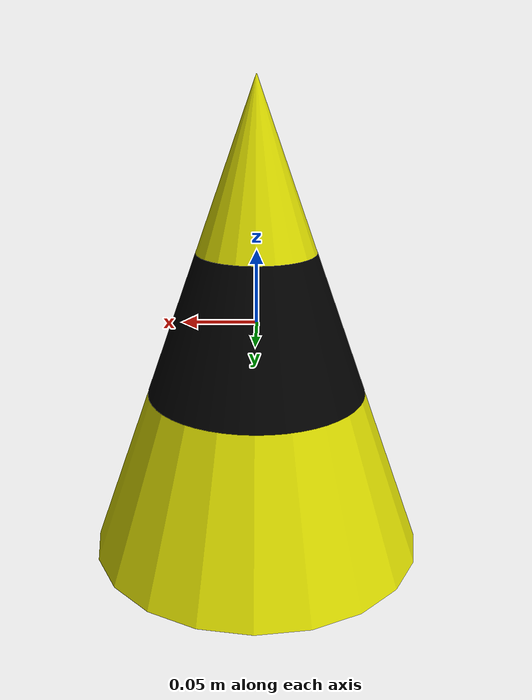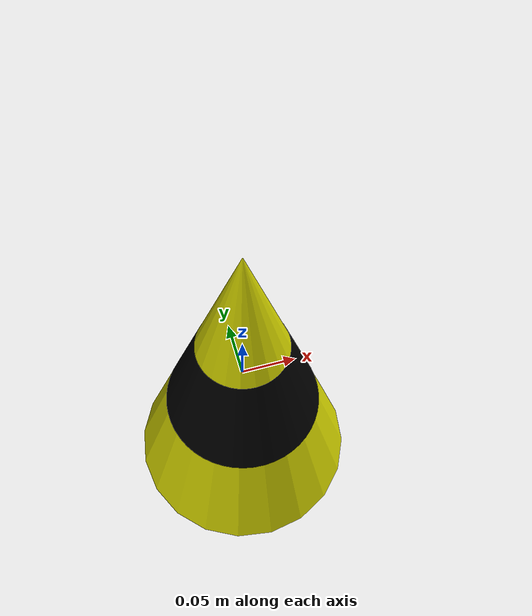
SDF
<?xml version="1.0" ?>
<sdf version="1.11">
  <model name="cone_yellow">
    <static>true</static>
    <link name="link">
      <visual name="visual">
        <geometry>
          <cone><radius>0.115</radius><length>0.325</length></cone>
        </geometry>
        <material>
          <ambient>0.9 0.9 0 1</ambient>
          <diffuse>0.9 0.9 0 1</diffuse>
        </material>
      </visual>
      <visual name="stripe">
        <pose>0 0 -0.04875 0 0 0</pose>
        <geometry>
          <mesh><uri>meshes/stripe.obj</uri></mesh>
        </geometry>
        <material>
          <ambient>0 0 0 1</ambient>
          <diffuse>0 0 0 1</diffuse>
        </material>
      </visual>
      <collision name="collision">
        <geometry>
          <cone><radius>0.115</radius><length>0.325</length></cone>
        </geometry>
      </collision>
    </link>
  </model>
</sdf>
